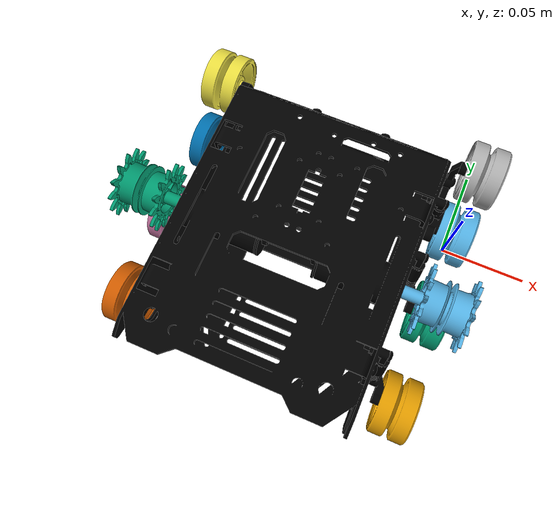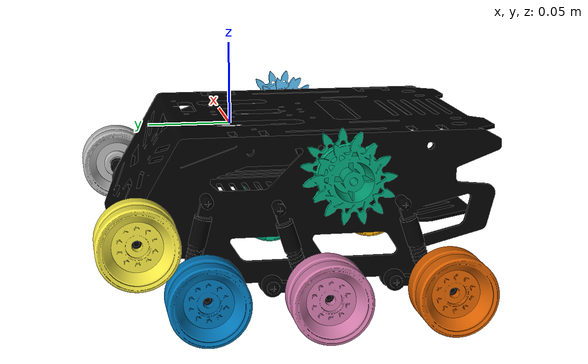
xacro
<?xml version='1.0' encoding='utf-8'?>

<robot xmlns:xacro="http://www.ros.org/wiki/xacro">

    <material name="metal_black">
        <color rgba="0.0 0.0 0.0 1.0" />
    </material>
    <material name="road_wheel">
        <color rgba="0.957 0.839 0.576 1.0" />
    </material>

    <link name="base_link">
        <inertial>
            <origin xyz="-0.08316536589651169 -0.019644178306641058 -0.007641892965444989"
                rpy="0.0 0.0 0.0" />
            <mass value="1.5501778272883482" />
            <inertia ixx="0.00455964362186642" iyy="0.005129830164751709" izz="0.007993318308848016"
                ixy="8.6548194980593e-06" iyz="0.0003548756538293898" ixz="-1.0413670358950416e-05" />
        </inertial>
        <visual name="base_link_visual">
            <origin xyz="0.0 0.0 0.0" rpy="0.0 0.0 0.0" />
            <geometry>
                <mesh filename="../meshes/base_link.stl" scale="0.001 0.001 0.001" />
            </geometry>
            <material name="metal_black" />

        </visual>
        <collision name="base_link_collision">
            <origin xyz="0.0 0.0 0.0" rpy="0.0 0.0 0.0" />
            <geometry>
                <mesh filename="../meshes/base_link.stl" scale="0.001 0.001 0.001" />
            </geometry>
        </collision>
    </link>

    <link name="right_drive_sprocket">
        <inertial>
            <origin xyz="4.041040893021375e-09 1.4369512937707497e-05 0.02455129089491322"
                rpy="1.2469549982861393e-62 -0.0 0.0" />
            <mass value="0.09152151104684562" />
            <inertia ixx="1.312943021186723e-05" iyy="1.3125134949870743e-05"
                izz="1.102396481554491e-05" ixy="-1.364702215166449e-15"
                iyz="-1.0407888211876016e-09" ixz="1.0267434169943288e-17" />
        </inertial>
        <visual name="right_drive_sprocket_visual">
            <origin xyz="-0.003683312846951794 0.033058568904078316 0.0958176724476687"
                rpy="6.078575305090689e-16 -2.6599521792892063e-14 -1.5707963267948963" />
            <geometry>
                <mesh filename="../meshes/right_drive_sprocket.stl" scale="0.001 0.001 0.001" />
            </geometry>
        </visual>
        <collision name="right_drive_sprocket_collision">
            <origin xyz="-0.003683312846951794 0.033058568904078316 0.0958176724476687"
                rpy="6.078575305090689e-16 -2.6599521792892063e-14 -1.5707963267948963" />
            <geometry>
                <mesh filename="../meshes/right_drive_sprocket.stl" scale="0.001 0.001 0.001" />
            </geometry>
        </collision>
    </link>
    <link name="left_drive_sprocket">
        <inertial>
            <origin xyz="4.041038526025887e-09 1.4366010886163183e-05 0.024551290914634587"
                rpy="3.94430452610506e-31 -0.0 3.889384548663214e-62" />
            <mass value="0.09152151104684574" />
            <inertia ixx="1.3129430211868475e-05" iyy="1.312513494987214e-05"
                izz="1.1023964815545466e-05" ixy="-1.364227876715987e-15"
                iyz="-1.0407888212510166e-09" ixz="1.0191184439849799e-17" />
        </inertial>
        <visual name="left_drive_sprocket_visual">
            <origin xyz="-0.003683312846951634 -0.03305856890407353 -0.06983656251086988"
                rpy="-5.065392549852166e-16 1.3345386098308293e-14 1.5707963267948963" />
            <geometry>
                <mesh filename="../meshes/left_drive_sprocket.stl" scale="0.001 0.001 0.001" />
            </geometry>
        </visual>
        <collision name="left_drive_sprocket_collision">
            <origin xyz="-0.003683312846951634 -0.03305856890407353 -0.06983656251086988"
                rpy="-5.065392549852166e-16 1.3345386098308293e-14 1.5707963267948963" />
            <geometry>
                <mesh filename="../meshes/left_drive_sprocket.stl" scale="0.001 0.001 0.001" />
            </geometry>
        </collision>
    </link>
    <link name="left_road_wheel_1">
        <inertial>
            <origin xyz="2.8461329648621357e-09 3.064652016604441e-09 -0.00958088928816288"
                rpy="1.246954998286142e-62 -0.0 0.0" />
            <mass value="0.11216702343401005" />
            <inertia ixx="1.68783266885227e-05" iyy="1.6878326689367083e-05"
                izz="2.6216797929676883e-05" ixy="-1.3552527156068686e-18"
                iyz="-5.253236442911686e-19" ixz="6.441695322810937e-18" />
        </inertial>
        <visual name="left_road_wheel_1_visual">
            <origin xyz="0.07013659583942188 -0.10186776229084465 0.07010007530246995"
                rpy="1.5707963267948963 1.5707963267948881 0" />
            <geometry>
                <mesh filename="../meshes/left_road_wheel_1.stl" scale="0.001 0.001 0.001" />
            </geometry>
        </visual>
        <collision name="left_road_wheel_1_collision">
            <origin xyz="0.07013659583942188 -0.10186776229084465 0.07010007530246995"
                rpy="1.5707963267948963 1.5707963267948881 0" />
            <geometry>
                <mesh filename="../meshes/left_road_wheel_1.stl" scale="0.001 0.001 0.001" />
            </geometry>
        </collision>
    </link>
    <link name="left_road_wheel_2">
        <inertial>
            <origin xyz="4.519537069036517e-09 3.73821126053997e-09 0.009580889288162987"
                rpy="1.246954998286142e-62 -0.0 0.0" />
            <mass value="0.11216702343401003" />
            <inertia ixx="1.6878326688520098e-05" iyy="1.6878326689365782e-05"
                izz="2.6216797929678346e-05" ixy="2.7105054312136455e-19"
                iyz="-6.337438615397181e-19" ixz="-6.333275105562395e-18" />
        </inertial>
        <visual name="left_road_wheel_2_visual">
            <origin xyz="0.004355632642285125 0.09857161061744062 -0.07010007530246995"
                rpy="-1.570796326794897 -1.5707963267948883 0" />
            <geometry>
                <mesh filename="../meshes/left_road_wheel_2.stl" scale="0.001 0.001 0.001" />
            </geometry>
        </visual>
        <collision name="left_road_wheel_2_collision">
            <origin xyz="0.004355632642285125 0.09857161061744062 -0.07010007530246995"
                rpy="-1.570796326794897 -1.5707963267948883 0" />
            <geometry>
                <mesh filename="../meshes/left_road_wheel_2.stl" scale="0.001 0.001 0.001" />
            </geometry>
        </collision>
    </link>
    <link name="left_road_wheel_3">
        <inertial>
            <origin xyz="3.139740201163477e-10 -1.8478067342897475e-09 -0.00958088928816352"
                rpy="1.2469549982861418e-62 -0.0 0.0" />
            <mass value="0.11216702343401011" />
            <inertia ixx="1.68783266885214e-05" iyy="1.6878326689363614e-05"
                izz="2.6216797929676666e-05" ixy="-1.0842021724853126e-19"
                iyz="3.590493739155734e-20" ixz="4.988340699471015e-18" />
        </inertial>
        <visual name="left_road_wheel_3_visual">
            <origin xyz="-0.12222553924811966 0.026045975176996396 0.07010007530246949"
                rpy="1.5707963267948963 1.5707963267948917 0" />
            <geometry>
                <mesh filename="../meshes/left_road_wheel_3.stl" scale="0.001 0.001 0.001" />
            </geometry>
        </visual>
        <collision name="left_road_wheel_3_collision">
            <origin xyz="-0.12222553924811966 0.026045975176996396 0.07010007530246949"
                rpy="1.5707963267948963 1.5707963267948917 0" />
            <geometry>
                <mesh filename="../meshes/left_road_wheel_3.stl" scale="0.001 0.001 0.001" />
            </geometry>
        </collision>
    </link>
    <link name="left_road_wheel_4">
        <inertial>
            <origin xyz="-9.311303283965345e-10 1.4730904762672025e-09 -0.00958088928816327"
                rpy="1.2469549982861418e-62 -0.0 0.0" />
            <mass value="0.11216702343401005" />
            <inertia ixx="1.68783266885214e-05" iyy="1.687832668936535e-05"
                izz="2.6216797929680135e-05" ixy="2.168404344971221e-19"
                iyz="-1.8090497758856318e-19" ixz="5.524830873730051e-18" />
        </inertial>
        <visual name="left_road_wheel_4_visual">
            <origin xyz="-0.05801282256901676 -0.0387098860681079 0.07010007530246985"
                rpy="1.5707963267948963 1.5707963267948926 0" />
            <geometry>
                <mesh filename="../meshes/left_road_wheel_4.stl" scale="0.001 0.001 0.001" />
            </geometry>
        </visual>
        <collision name="left_road_wheel_4_collision">
            <origin xyz="-0.05801282256901676 -0.0387098860681079 0.07010007530246985"
                rpy="1.5707963267948963 1.5707963267948926 0" />
            <geometry>
                <mesh filename="../meshes/left_road_wheel_4.stl" scale="0.001 0.001 0.001" />
            </geometry>
        </collision>
    </link>
    <link name="right_road_wheel_1">
        <inertial>
            <origin xyz="2.846133098088899e-09 3.06465188781857e-09 0.009580889268442597"
                rpy="1.2469549982861416e-62 -0.0 -7.778769097326429e-62" />
            <mass value="0.11216702343400992" />
            <inertia ixx="1.687832668851904e-05" iyy="1.687832668936459e-05"
                izz="2.621679792967558e-05" ixy="-7.0473141211560475e-19"
                iyz="-1.2869003604066369e-18" ixz="-5.185713141155922e-18" />
        </inertial>
        <visual name="right_road_wheel_1_visual">
            <origin xyz="0.07013659583942143 -0.10186776229084438 0.09555415965607067"
                rpy="1.570796326794897 -1.57079632679489 0" />
            <geometry>
                <mesh filename="../meshes/right_road_wheel_1.stl" scale="0.001 0.001 0.001" />
            </geometry>
        </visual>
        <collision name="right_road_wheel_1_collision">
            <origin xyz="0.07013659583942143 -0.10186776229084438 0.09555415965607067"
                rpy="1.570796326794897 -1.57079632679489 0" />
            <geometry>
                <mesh filename="../meshes/right_road_wheel_1.stl" scale="0.001 0.001 0.001" />
            </geometry>
        </collision>
    </link>
    <link name="right_road_wheel_4">
        <inertial>
            <origin xyz="3.1397393129850573e-10 -1.8478075070049727e-09 0.00958088926844195"
                rpy="-3.94430452610506e-31 -0.0 0.0" />
            <mass value="0.11216702343400986" />
            <inertia ixx="1.6878326688519393e-05" iyy="1.6878326689361337e-05"
                izz="2.621679792966886e-05" ixy="-9.757819552369856e-19"
                iyz="3.6338682925404645e-18" ixz="-1.027822913419722e-17" />
        </inertial>
        <visual name="right_road_wheel_4_visual">
            <origin xyz="-0.12222553924811948 0.026045975176995792 0.09555415965606973"
                rpy="1.5707963267948966 -1.570796326794858 0" />
            <geometry>
                <mesh filename="../meshes/right_road_wheel_4.stl" scale="0.001 0.001 0.001" />
            </geometry>
        </visual>
        <collision name="right_road_wheel_4_collision">
            <origin xyz="-0.12222553924811948 0.026045975176995792 0.09555415965606973"
                rpy="1.5707963267948966 -1.570796326794858 0" />
            <geometry>
                <mesh filename="../meshes/right_road_wheel_4.stl" scale="0.001 0.001 0.001" />
            </geometry>
        </collision>
    </link>
    <link name="right_road_wheel_2">
        <inertial>
            <origin xyz="4.51953711788633e-09 3.73821126053997e-09 -0.009580889268442328"
                rpy="1.2469549982861416e-62 -0.0 7.778769097326429e-62" />
            <mass value="0.1121670234340099" />
            <inertia ixx="1.687832668851755e-05" iyy="1.687832668936448e-05"
                izz="2.6216797929676395e-05" ixy="-3.5236570605775716e-19"
                iyz="-2.1678146255511007e-18" ixz="6.114061251346646e-18" />
        </inertial>
        <visual name="right_road_wheel_2_visual">
            <origin xyz="0.004355632642284655 0.09857161061744041 -0.09555415965607052"
                rpy="-1.5707963267948963 1.57079632679489 0" />
            <geometry>
                <mesh filename="../meshes/right_road_wheel_2.stl" scale="0.001 0.001 0.001" />
            </geometry>
        </visual>
        <collision name="right_road_wheel_2_collision">
            <origin xyz="0.004355632642284655 0.09857161061744041 -0.09555415965607052"
                rpy="-1.5707963267948963 1.57079632679489 0" />
            <geometry>
                <mesh filename="../meshes/right_road_wheel_2.stl" scale="0.001 0.001 0.001" />
            </geometry>
        </collision>
    </link>
    <link name="right_road_wheel_3">
        <inertial>
            <origin xyz="-9.311300042114113e-10 1.473090405212929e-09 0.009580889268442062"
                rpy="-3.94430452610506e-31 -0.0 7.778769097326429e-62" />
            <mass value="0.11216702343401017" />
            <inertia ixx="1.6878326688521128e-05" iyy="1.6878326689365498e-05"
                izz="2.621679792968008e-05" ixy="4.0657581468204303e-19"
                iyz="-3.777102651728527e-19" ixz="-6.823500060994002e-18" />
        </inertial>
        <visual name="right_road_wheel_3_visual">
            <origin xyz="-0.05801282256901665 -0.03870988606810794 0.09555415965606998"
                rpy="1.570796326794897 -1.5707963267948937 0" />
            <geometry>
                <mesh filename="../meshes/right_road_wheel_3.stl" scale="0.001 0.001 0.001" />
            </geometry>
        </visual>
        <collision name="right_road_wheel_3_collision">
            <origin xyz="-0.05801282256901665 -0.03870988606810794 0.09555415965606998"
                rpy="1.570796326794897 -1.5707963267948937 0" />
            <geometry>
                <mesh filename="../meshes/right_road_wheel_3.stl" scale="0.001 0.001 0.001" />
            </geometry>
        </collision>
    </link>
    <joint name="base_link_left_drive_sprocket_joint" type="continuous">
        <origin xyz="-0.15266367999999983 -0.034741880000000995 0.006539760000000062"
            rpy="1.5707963267948937 -7.092844299934858e-16 -1.5707963267948912" />
        <parent link="base_link" />
        <child link="left_drive_sprocket" />
        <axis xyz="1.2645626016280148e-31 2.700138880472324e-15 -0.9999999999999999" />
    </joint>
    <joint name="base_link_right_drive_sprocket_joint" type="continuous">
        <origin xyz="-0.013663679999999827 -0.03474188000000015 0.006539760000000028"
            rpy="-1.5707963267948648 -7.092844299934858e-16 -1.5707963267948912" />
        <parent link="base_link" />
        <child link="right_drive_sprocket" />
        <axis xyz="-1.2645626016280148e-31 -3.202208621467934e-14 -0.9999999999999999" />
    </joint>
    <joint name="base_link_left_road_wheel_1_joint" type="continuous">
        <origin xyz="-0.16696368000000036 0.06963123999999911 -0.024013450000000033"
            rpy="-1.570796326794895 -7.092844299934858e-16 -1.5707963267948912" />
        <parent link="base_link" />
        <child link="left_road_wheel_1" />
        <axis xyz="-1.2645626016280148e-31 -1.7965940591173076e-15 -0.9999999999999999" />
    </joint>
    <joint name="base_link_left_road_wheel_2_joint" type="continuous">
        <origin xyz="-0.16546368000000009 0.035092679999999044 -0.055255860000000025"
            rpy="1.5707963267948981 -7.092844299934858e-16 -1.5707963267948912" />
        <parent link="base_link" />
        <child link="left_road_wheel_2" />
        <axis xyz="1.2645626016280148e-31 -1.7965940591173076e-15 -0.9999999999999999" />
    </joint>
    <joint name="base_link_left_road_wheel_3_joint" type="continuous">
        <origin xyz="-0.16796367999999975 -0.026022410000001096 -0.05650921999999998"
            rpy="-1.570796326794893 -7.092844299934858e-16 -1.5707963267948912" />
        <parent link="base_link" />
        <child link="left_road_wheel_4" />
        <axis xyz="-1.2645626016280148e-31 -3.848109180162378e-15 -0.9999999999999999" />
    </joint>
    <joint name="base_link_left_road_wheel_4_joint" type="continuous">
        <origin xyz="-0.16796367999999942 -0.09050670000000123 -0.05623764999999994"
            rpy="-1.570796326794893 -7.092844299934858e-16 -1.5707963267948912" />
        <parent link="base_link" />
        <child link="left_road_wheel_3" />
        <axis xyz="-1.2645626016280148e-31 -3.844841030998742e-15 -0.9999999999999999" />
    </joint>
    <joint name="base_link_right_road_wheel_4_joint" type="continuous">
        <origin xyz="0.0016363200000005975 -0.0905067000000002 -0.05623764999999998"
            rpy="-1.5707963267948937 -7.092844299934858e-16 -1.5707963267948912" />
        <parent link="base_link" />
        <child link="right_road_wheel_4" />
        <axis xyz="-1.2645626016280148e-31 -3.0943040121427453e-15 -0.9999999999999999" />
    </joint>
    <joint name="base_link_right_road_wheel_3_joint" type="continuous">
        <origin xyz="0.0016363200000002515 -0.026022410000000062 -0.05650922000000003"
            rpy="-1.5707963267948937 -7.092844299934858e-16 -1.5707963267948912" />
        <parent link="base_link" />
        <child link="right_road_wheel_3" />
        <axis xyz="-1.2645626016280148e-31 -3.0910358629791097e-15 -0.9999999999999999" />
    </joint>
    <joint name="base_link_right_road_wheel_2_joint" type="continuous">
        <origin xyz="-0.0008636800000000794 0.03509268000000005 -0.055255860000000066"
            rpy="1.5707963267949014 -7.092844299934858e-16 -1.5707963267948912" />
        <parent link="base_link" />
        <child link="right_road_wheel_2" />
        <axis xyz="1.2645626016280148e-31 -5.142550984024171e-15 -0.9999999999999999" />
    </joint>
    <joint name="base_link_right_road_wheel_1_joint" type="continuous">
        <origin xyz="0.0006363199999996732 0.06963124000000014 -0.02401345000000007"
            rpy="-1.5707963267948917 -7.092844299934858e-16 -1.5707963267948912" />
        <parent link="base_link" />
        <child link="right_road_wheel_1" />
        <axis xyz="-1.2645626016280148e-31 -5.142550984024171e-15 -0.9999999999999999" />
    </joint>
</robot>
